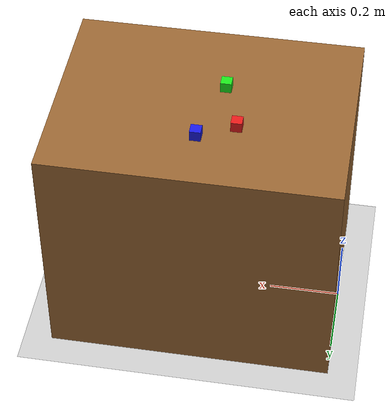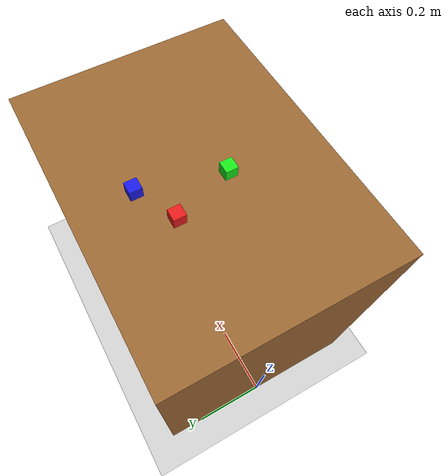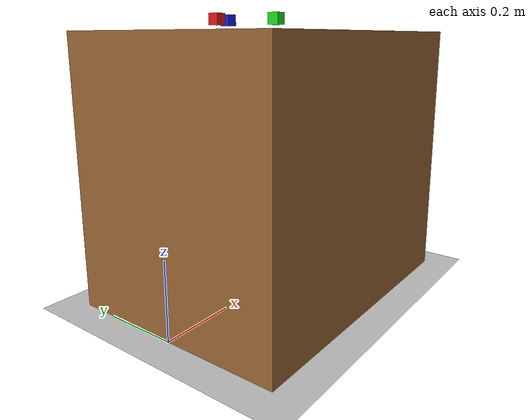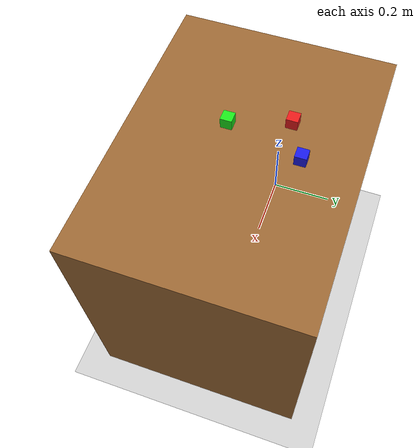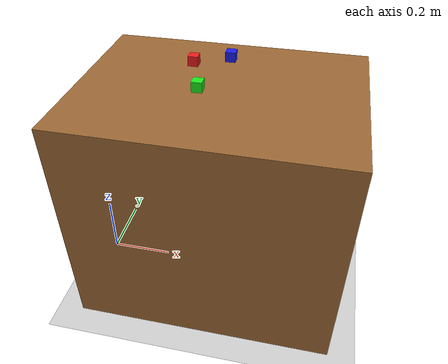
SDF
<?xml version="1.0" ?>
<!--
  Picker V2 抓取仿真世界
  包含: 桌面 + 彩色方块 + 光照
-->
<sdf version="1.8">
  <world name="pick_place_world">

    <!-- 物理引擎 -->
    <physics name="default_physics" type="ode">
      <max_step_size>0.001</max_step_size>
      <real_time_factor>1.0</real_time_factor>
    </physics>

    <!-- 光照 -->
    <light type="directional" name="sun">
      <cast_shadows>true</cast_shadows>
      <pose>0 0 10 0 0 0</pose>
      <diffuse>0.8 0.8 0.8 1</diffuse>
      <specular>0.2 0.2 0.2 1</specular>
      <direction>-0.5 0.1 -0.9</direction>
    </light>

    <!-- 地面 -->
    <model name="ground_plane">
      <static>true</static>
      <link name="link">
        <collision name="collision">
          <geometry>
            <plane>
              <normal>0 0 1</normal>
              <size>10 10</size>
            </plane>
          </geometry>
        </collision>
        <visual name="visual">
          <geometry>
            <plane>
              <normal>0 0 1</normal>
              <size>10 10</size>
            </plane>
          </geometry>
          <material>
            <ambient>0.8 0.8 0.8 1</ambient>
            <diffuse>0.8 0.8 0.8 1</diffuse>
          </material>
        </visual>
      </link>
    </model>

    <!-- 工作台 -->
    <model name="table">
      <static>true</static>
      <pose>0.4 0 0.35 0 0 0</pose>
      <link name="link">
        <collision name="collision">
          <geometry>
            <box>
              <size>0.8 0.6 0.7</size>
            </box>
          </geometry>
        </collision>
        <visual name="visual">
          <geometry>
            <box>
              <size>0.8 0.6 0.7</size>
            </box>
          </geometry>
          <material>
            <ambient>0.6 0.4 0.2 1</ambient>
            <diffuse>0.6 0.4 0.2 1</diffuse>
          </material>
        </visual>
      </link>
    </model>

    <!-- 红色方块 -->
    <model name="red_block">
      <pose>0.3 0.1 0.73 0 0 0</pose>
      <link name="link">
        <inertial>
          <mass>0.05</mass>
          <inertia>
            <ixx>0.0000083</ixx><iyy>0.0000083</iyy><izz>0.0000083</izz>
            <ixy>0</ixy><ixz>0</ixz><iyz>0</iyz>
          </inertia>
        </inertial>
        <collision name="collision">
          <geometry><box><size>0.03 0.03 0.03</size></box></geometry>
        </collision>
        <visual name="visual">
          <geometry><box><size>0.03 0.03 0.03</size></box></geometry>
          <material>
            <ambient>0.9 0.1 0.1 1</ambient>
            <diffuse>0.9 0.1 0.1 1</diffuse>
          </material>
        </visual>
      </link>
    </model>

    <!-- 绿色方块 -->
    <model name="green_block">
      <pose>0.35 -0.05 0.73 0 0 0</pose>
      <link name="link">
        <inertial>
          <mass>0.05</mass>
          <inertia>
            <ixx>0.0000083</ixx><iyy>0.0000083</iyy><izz>0.0000083</izz>
            <ixy>0</ixy><ixz>0</ixz><iyz>0</iyz>
          </inertia>
        </inertial>
        <collision name="collision">
          <geometry><box><size>0.03 0.03 0.03</size></box></geometry>
        </collision>
        <visual name="visual">
          <geometry><box><size>0.03 0.03 0.03</size></box></geometry>
          <material>
            <ambient>0.1 0.9 0.1 1</ambient>
            <diffuse>0.1 0.9 0.1 1</diffuse>
          </material>
        </visual>
      </link>
    </model>

    <!-- 蓝色方块 -->
    <model name="blue_block">
      <pose>0.4 0.15 0.73 0 0 0</pose>
      <link name="link">
        <inertial>
          <mass>0.05</mass>
          <inertia>
            <ixx>0.0000083</ixx><iyy>0.0000083</iyy><izz>0.0000083</izz>
            <ixy>0</ixy><ixz>0</ixz><iyz>0</iyz>
          </inertia>
        </inertial>
        <collision name="collision">
          <geometry><box><size>0.03 0.03 0.03</size></box></geometry>
        </collision>
        <visual name="visual">
          <geometry><box><size>0.03 0.03 0.03</size></box></geometry>
          <material>
            <ambient>0.1 0.1 0.9 1</ambient>
            <diffuse>0.1 0.1 0.9 1</diffuse>
          </material>
        </visual>
      </link>
    </model>

  </world>
</sdf>
